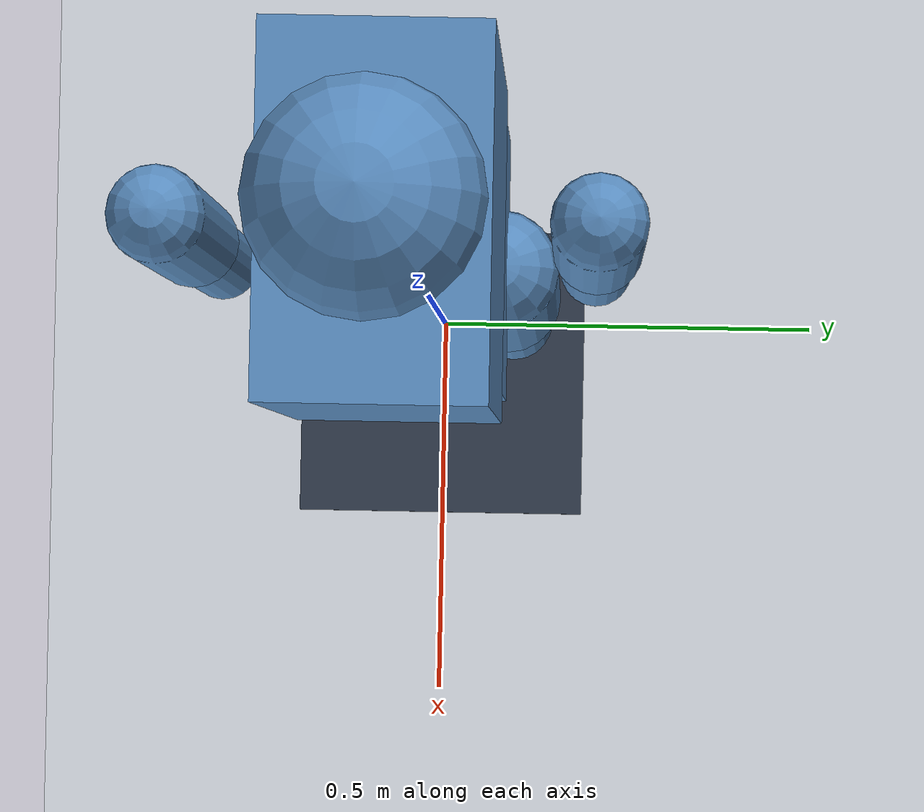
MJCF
<mujoco model="dense_motor_humanoid">
  <compiler angle="radian" autolimits="true"/>
  <option timestep="0.001" integrator="implicitfast" solver="Newton"
          iterations="8" ls_iterations="12" tolerance="1e-8"
          gravity="0 0 -9.81"/>
  <visual>
    <global offwidth="960" offheight="720"/>
  </visual>
  <default>
    <joint damping="2.2" stiffness="20" armature="0.015" limited="true"/>
    <geom condim="4" friction="0.9 0.02 0.001" contype="1" conaffinity="0"
          solref="0.006 1" solimp="0.95 0.99 0.002" density="800"/>
  </default>
  <asset>
    <material name="body" rgba="0.35 0.55 0.75 1"/>
    <material name="foot" rgba="0.18 0.22 0.28 1"/>
    <material name="ground" rgba="0.82 0.84 0.87 1"/>
  </asset>
  <worldbody>
    <light pos="0 -3 4" dir="0 1 -1"/>
    <geom name="floor" type="plane" size="4 4 0.1" material="ground"
          condim="4" friction="1.0 0.03 0.002" contype="0" conaffinity="1"/>
    <body name="pelvis" pos="0 0 0.95">
      <freejoint name="root"/>
      <geom type="box" size="0.14 0.105 0.09" mass="8.0" material="body"/>

      <body name="torso_roll_link" pos="0 0 0.08">
        <inertial pos="0 0 0" mass="0.10" diaginertia="0.001 0.001 0.001"/>
        <joint name="spine_roll" axis="1 0 0" range="-0.35 0.35"/>
        <body name="torso" pos="0 0 0.23">
          <joint name="spine_pitch" axis="0 1 0" range="-0.45 0.45"/>
          <geom type="box" size="0.17 0.105 0.23" mass="18.0" material="body"/>
          <body name="head" pos="0 0 0.34">
            <geom type="sphere" size="0.105" mass="4.5" material="body"/>
          </body>
          <body name="left_upper_arm" pos="0 0.20 0.16">
            <joint name="left_shoulder" axis="0 1 0" range="-1.2 1.2"/>
            <geom type="capsule" fromto="0 0 0 0 0 -0.27" size="0.045" mass="2.0" material="body"/>
            <body name="left_forearm" pos="0 0 -0.27">
              <joint name="left_elbow" axis="0 1 0" range="-0.1 1.7"/>
              <geom type="capsule" fromto="0 0 0 0 0 -0.25" size="0.038" mass="1.3" material="body"/>
            </body>
          </body>
          <body name="right_upper_arm" pos="0 -0.20 0.16">
            <joint name="right_shoulder" axis="0 1 0" range="-1.2 1.2"/>
            <geom type="capsule" fromto="0 0 0 0 0 -0.27" size="0.045" mass="2.0" material="body"/>
            <body name="right_forearm" pos="0 0 -0.27">
              <joint name="right_elbow" axis="0 1 0" range="-0.1 1.7"/>
              <geom type="capsule" fromto="0 0 0 0 0 -0.25" size="0.038" mass="1.3" material="body"/>
            </body>
          </body>
        </body>
      </body>

      <body name="left_hip_roll_link" pos="0 0.095 -0.06">
        <inertial pos="0 0 0" mass="0.10" diaginertia="0.001 0.001 0.001"/>
        <joint name="left_hip_roll" axis="1 0 0" range="-0.45 0.45" stiffness="45"/>
        <body name="left_thigh">
          <joint name="left_hip_pitch" axis="0 1 0" range="-1.0 1.0" stiffness="45"/>
          <geom type="capsule" fromto="0 0 0 0 0 -0.42" size="0.065" mass="6.5" material="body"/>
          <body name="left_shin" pos="0 0 -0.42">
            <joint name="left_knee" axis="0 1 0" range="-0.05 1.6" stiffness="55"/>
            <geom type="capsule" fromto="0 0 0 0 0 -0.40" size="0.052" mass="4.0" material="body"/>
            <body name="left_ankle_roll_link" pos="0 0 -0.40">
              <inertial pos="0 0 0" mass="0.10" diaginertia="0.001 0.001 0.001"/>
              <joint name="left_ankle_roll" axis="1 0 0" range="-0.35 0.35" stiffness="75"/>
              <body name="left_foot">
                <joint name="left_ankle_pitch" axis="0 1 0" range="-0.55 0.55" stiffness="75"/>
                <geom name="left_foot_geom" type="box" pos="0.07 0 -0.035"
                      size="0.19 0.095 0.035" mass="1.8" material="foot"/>
              </body>
            </body>
          </body>
        </body>
      </body>

      <body name="right_hip_roll_link" pos="0 -0.095 -0.06">
        <inertial pos="0 0 0" mass="0.10" diaginertia="0.001 0.001 0.001"/>
        <joint name="right_hip_roll" axis="1 0 0" range="-0.45 0.45" stiffness="45"/>
        <body name="right_thigh">
          <joint name="right_hip_pitch" axis="0 1 0" range="-1.0 1.0" stiffness="45"/>
          <geom type="capsule" fromto="0 0 0 0 0 -0.42" size="0.065" mass="6.5" material="body"/>
          <body name="right_shin" pos="0 0 -0.42">
            <joint name="right_knee" axis="0 1 0" range="-0.05 1.6" stiffness="55"/>
            <geom type="capsule" fromto="0 0 0 0 0 -0.40" size="0.052" mass="4.0" material="body"/>
            <body name="right_ankle_roll_link" pos="0 0 -0.40">
              <inertial pos="0 0 0" mass="0.10" diaginertia="0.001 0.001 0.001"/>
              <joint name="right_ankle_roll" axis="1 0 0" range="-0.35 0.35" stiffness="75"/>
              <body name="right_foot">
                <joint name="right_ankle_pitch" axis="0 1 0" range="-0.55 0.55" stiffness="75"/>
                <geom name="right_foot_geom" type="box" pos="0.07 0 -0.035"
                      size="0.19 0.095 0.035" mass="1.8" material="foot"/>
              </body>
            </body>
          </body>
        </body>
      </body>
    </body>
  </worldbody>
  <sensor>
    <framequat name="pelvis_quat" objtype="body" objname="pelvis"/>
    <frameangvel name="pelvis_angvel" objtype="body" objname="pelvis"/>
    <subtreecom name="center_of_mass" body="pelvis"/>
  </sensor>
</mujoco>
